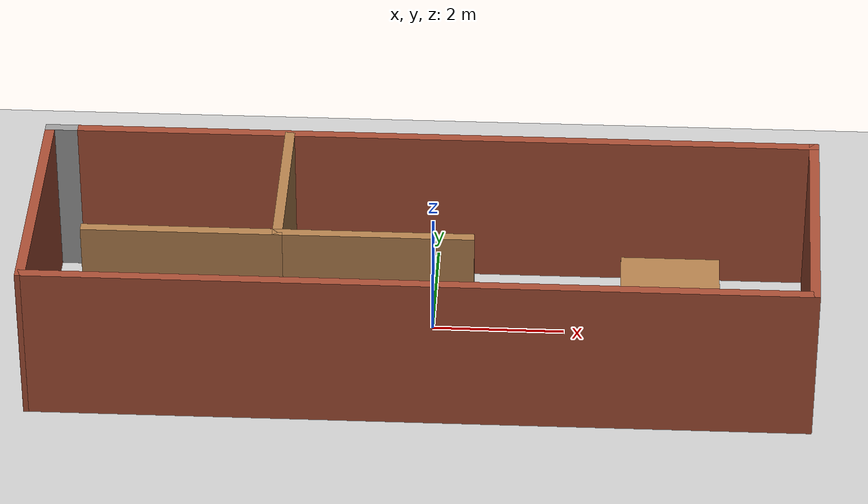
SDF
<sdf version="1.7">
 <world name="default">
  <light name="sun" type="directional">
   <pose>0 0 10 0 -0 0</pose>
   <diffuse>0.8 0.8 0.8 1</diffuse>
   <specular>0.2 0.2 0.2 1</specular>
   <attenuation>
    <range>1000</range>
    <constant>0.9</constant>
    <linear>0.01</linear>
    <quadratic>0.001</quadratic>
   </attenuation>
   <direction>-0.5 0.1 -0.9</direction>
   <spot><inner_angle>0</inner_angle><outer_angle>0</outer_angle><falloff>0</falloff></spot>
  </light>
  <model name="ground_plane">
   <static>1</static>
   <link name="link">
    <collision name="collision">
     <geometry><plane><normal>0 0 1</normal><size>100 100</size></plane></geometry>
     <surface><friction><ode><mu>100</mu><mu2>50</mu2></ode></friction></surface>
    </collision>
    <visual name="visual">
     <cast_shadows>0</cast_shadows>
     <geometry><plane><normal>0 0 1</normal><size>100 100</size></plane></geometry>
     <material>
      <script><uri>file://media/materials/scripts/gazebo.material</uri><name>Gazebo/Grey</name></script>
     </material>
    </visual>
   </link>
  </model>
  <gravity>0 0 -9.8</gravity>
  <magnetic_field>6e-06 2.3e-05 -4.2e-05</magnetic_field>
  <atmosphere type="adiabatic"/>
  <physics type="ode">
   <max_step_size>0.001</max_step_size>
   <real_time_factor>1</real_time_factor>
   <real_time_update_rate>1000</real_time_update_rate>
  </physics>
  <scene><ambient>0.4 0.4 0.4 1</ambient><background>0.7 0.7 0.7 1</background><shadows>1</shadows></scene>
  <spherical_coordinates>
   <surface_model>EARTH_WGS84</surface_model>
   <latitude_deg>0</latitude_deg>
   <longitude_deg>0</longitude_deg>
   <elevation>0</elevation>
   <heading_deg>0</heading_deg>
  </spherical_coordinates>
  <model name="house">
   <pose>-0.103306 0.067654 0 0 -0 0</pose>
   <link name="Wall_0">
    <collision name="Wall_0_Collision">
     <geometry><box><size>0.5 0.15 2.5</size></box></geometry>
     <pose>0 0 1.25 0 -0 0</pose>
    </collision>
    <visual name="Wall_0_Visual">
     <pose>0 0 1.25 0 -0 0</pose>
     <geometry><box><size>0.5 0.15 2.5</size></box></geometry>
     <material>
      <script><uri>file://media/materials/scripts/gazebo.material</uri><name>Gazebo/Grey</name></script>
      <ambient>1 1 1 1</ambient>
     </material>
     <meta><layer>0</layer></meta>
    </visual>
    <pose>-5.67577 1.4676 0 0 -0 0</pose>
   </link>
   <link name="Wall_1">
    <collision name="Wall_1_Collision">
     <geometry><box><size>11.5 0.15 2.5</size></box></geometry>
     <pose>0 0 1.25 0 -0 0</pose>
    </collision>
    <visual name="Wall_1_Visual">
     <pose>0 0 1.25 0 -0 0</pose>
     <geometry><box><size>11.5 0.15 2.5</size></box></geometry>
     <material>
      <script><uri>file://media/materials/scripts/gazebo.material</uri><name>Gazebo/Bricks</name></script>
      <ambient>1 1 1 1</ambient>
     </material>
     <meta><layer>0</layer></meta>
    </visual>
    <pose>0.174227 1.4676 0 0 -0 0</pose>
   </link>
   <link name="Wall_10">
    <collision name="Wall_10_Collision">
     <geometry><box><size>2.75 0.15 2.5</size></box></geometry>
     <pose>0 0 1.25 0 -0 0</pose>
    </collision>
    <visual name="Wall_10_Visual">
     <pose>0 0 1.25 0 -0 0</pose>
     <geometry><box><size>2.75 0.15 2.5</size></box></geometry>
     <material>
      <script><uri>file://media/materials/scripts/gazebo.material</uri><name>Gazebo/Wood</name></script>
      <ambient>1 1 1 1</ambient>
     </material>
     <meta><layer>0</layer></meta>
    </visual>
    <pose>-2.16077 0.137598 0 0 -0 1.5708</pose>
   </link>
   <link name="Wall_12">
    <collision name="Wall_12_Collision">
     <geometry><box><size>3 0.15 2.5</size></box></geometry>
     <pose>0 0 1.25 0 -0 0</pose>
    </collision>
    <visual name="Wall_12_Visual">
     <pose>0 0 1.25 0 -0 0</pose>
     <geometry><box><size>3 0.15 2.5</size></box></geometry>
     <material>
      <script><uri>file://media/materials/scripts/gazebo.material</uri><name>Gazebo/Wood</name></script>
      <ambient>1 1 1 1</ambient>
     </material>
     <meta><layer>0</layer></meta>
    </visual>
    <pose>-3.58577 -1.1624 0 0 -0 3.14159</pose>
   </link>
   <link name="Wall_14">
    <collision name="Wall_14_Collision">
     <geometry><box><size>3 0.15 2.5</size></box></geometry>
     <pose>0 0 1.25 0 -0 0</pose>
    </collision>
    <visual name="Wall_14_Visual">
     <pose>0 0 1.25 0 -0 0</pose>
     <geometry><box><size>3 0.15 2.5</size></box></geometry>
     <material>
      <script><uri>file://media/materials/scripts/gazebo.material</uri><name>Gazebo/Wood</name></script>
      <ambient>1 1 1 1</ambient>
     </material>
     <meta><layer>0</layer></meta>
    </visual>
    <pose>-0.735773 -1.1624 0 0 -0 0</pose>
   </link>
   <link name="Wall_2">
    <collision name="Wall_2_Collision">
     <geometry><box><size>3.98106 0.15 2.5</size></box></geometry>
     <pose>0 0 1.25 0 -0 0</pose>
    </collision>
    <visual name="Wall_2_Visual">
     <pose>0 0 1.25 0 -0 0</pose>
     <geometry><box><size>3.98106 0.15 2.5</size></box></geometry>
     <material>
      <script><uri>file://media/materials/scripts/gazebo.material</uri><name>Gazebo/Bricks</name></script>
      <ambient>1 1 1 1</ambient>
     </material>
     <meta><layer>0</layer></meta>
    </visual>
    <pose>5.80423 -0.447402 0 0 -0 -1.59429</pose>
   </link>
   <link name="Wall_3">
    <collision name="Wall_3_Collision">
     <geometry><box><size>11.75 0.15 2.5</size></box></geometry>
     <pose>0 0 1.25 0 -0 0</pose>
    </collision>
    <visual name="Wall_3_Visual">
     <pose>0 0 1.25 0 -0 0</pose>
     <geometry><box><size>11.75 0.15 2.5</size></box></geometry>
     <material>
      <script><uri>file://media/materials/scripts/gazebo.material</uri><name>Gazebo/Bricks</name></script>
      <ambient>1 1 1 1</ambient>
     </material>
     <meta><layer>0</layer></meta>
    </visual>
    <pose>-0.040773 -2.3724 0 0 -0 3.14159</pose>
   </link>
   <link name="Wall_8">
    <collision name="Wall_8_Collision">
     <geometry><box><size>3.99001 0.15 2.5</size></box></geometry>
     <pose>0 0 1.25 0 -0 0</pose>
    </collision>
    <visual name="Wall_8_Visual">
     <pose>0 0 1.25 0 -0 0</pose>
     <geometry><box><size>3.99001 0.15 2.5</size></box></geometry>
     <material>
      <script><uri>file://media/materials/scripts/gazebo.material</uri><name>Gazebo/Bricks</name></script>
      <ambient>1 1 1 1</ambient>
     </material>
     <meta><layer>0</layer></meta>
    </visual>
    <pose>-5.84577 -0.452403 0 0 -0 -1.56819</pose>
   </link>
   <static>1</static>
  </model>
  <model name="table">
   <static>1</static>
   <link name="link">
    <collision name="surface">
     <pose>0 0 1 0 -0 0</pose>
     <geometry><box><size>1.5 0.8 0.03</size></box></geometry>
     <surface><friction><ode><mu>0.6</mu><mu2>0.6</mu2></ode></friction></surface>
    </collision>
    <visual name="visual1">
     <pose>0 0 1 0 -0 0</pose>
     <geometry><box><size>1.5 0.8 0.03</size></box></geometry>
     <material>
      <script><uri>file://media/materials/scripts/gazebo.material</uri><name>Gazebo/Wood</name></script>
     </material>
    </visual>
    <collision name="front_left_leg">
     <pose>0.68 0.38 0.5 0 -0 0</pose>
     <geometry><cylinder><radius>0.02</radius><length>1</length></cylinder></geometry>
    </collision>
    <visual name="front_left_leg">
     <pose>0.68 0.38 0.5 0 -0 0</pose>
     <geometry><cylinder><radius>0.02</radius><length>1</length></cylinder></geometry>
     <material>
      <script><uri>file://media/materials/scripts/gazebo.material</uri><name>Gazebo/Grey</name></script>
     </material>
    </visual>
    <collision name="front_right_leg">
     <pose>0.68 -0.38 0.5 0 -0 0</pose>
     <geometry><cylinder><radius>0.02</radius><length>1</length></cylinder></geometry>
    </collision>
    <visual name="front_right_leg">
     <pose>0.68 -0.38 0.5 0 -0 0</pose>
     <geometry><cylinder><radius>0.02</radius><length>1</length></cylinder></geometry>
     <material>
      <script><uri>file://media/materials/scripts/gazebo.material</uri><name>Gazebo/Grey</name></script>
     </material>
    </visual>
    <collision name="back_right_leg">
     <pose>-0.68 -0.38 0.5 0 -0 0</pose>
     <geometry><cylinder><radius>0.02</radius><length>1</length></cylinder></geometry>
    </collision>
    <visual name="back_right_leg">
     <pose>-0.68 -0.38 0.5 0 -0 0</pose>
     <geometry><cylinder><radius>0.02</radius><length>1</length></cylinder></geometry>
     <material>
      <script><uri>file://media/materials/scripts/gazebo.material</uri><name>Gazebo/Grey</name></script>
     </material>
    </visual>
    <collision name="back_left_leg">
     <pose>-0.68 0.38 0.5 0 -0 0</pose>
     <geometry><cylinder><radius>0.02</radius><length>1</length></cylinder></geometry>
    </collision>
    <visual name="back_left_leg">
     <pose>-0.68 0.38 0.5 0 -0 0</pose>
     <geometry><cylinder><radius>0.02</radius><length>1</length></cylinder></geometry>
     <material>
      <script><uri>file://media/materials/scripts/gazebo.material</uri><name>Gazebo/Grey</name></script>
     </material>
    </visual>
   </link>
   <pose>3.59909 0.184104 0 0 -0 0</pose>
  </model>
 </world>
</sdf>
